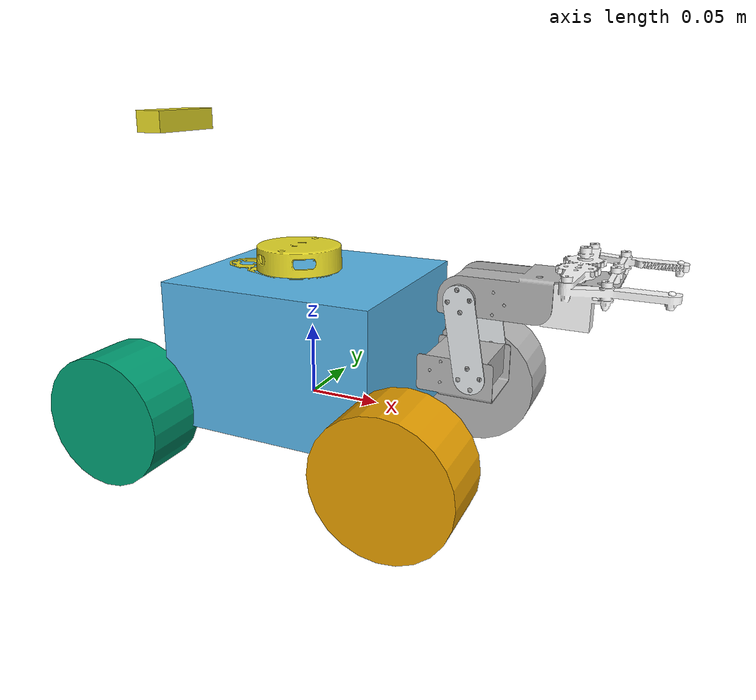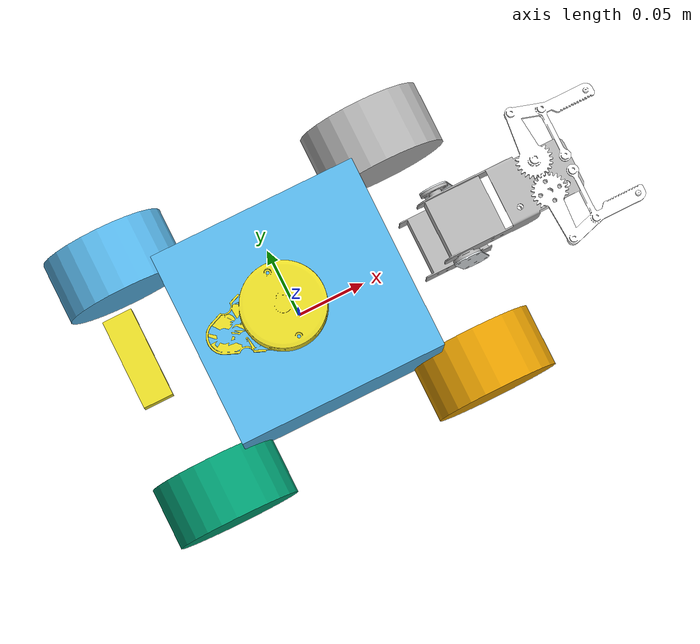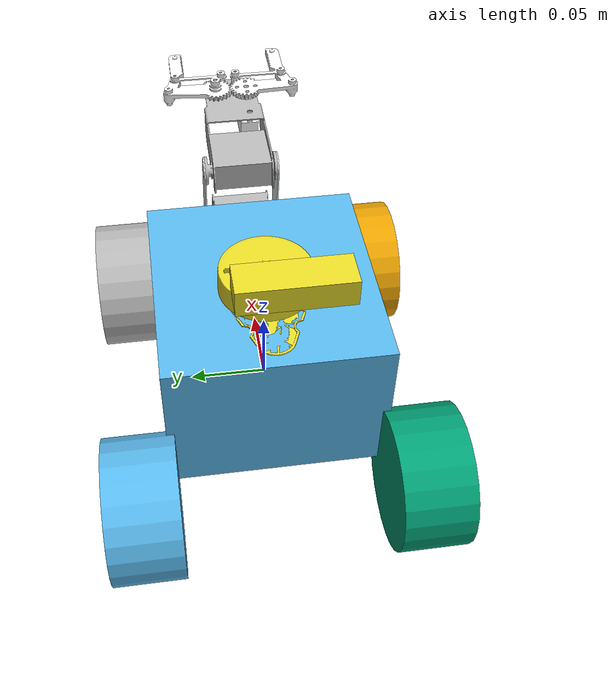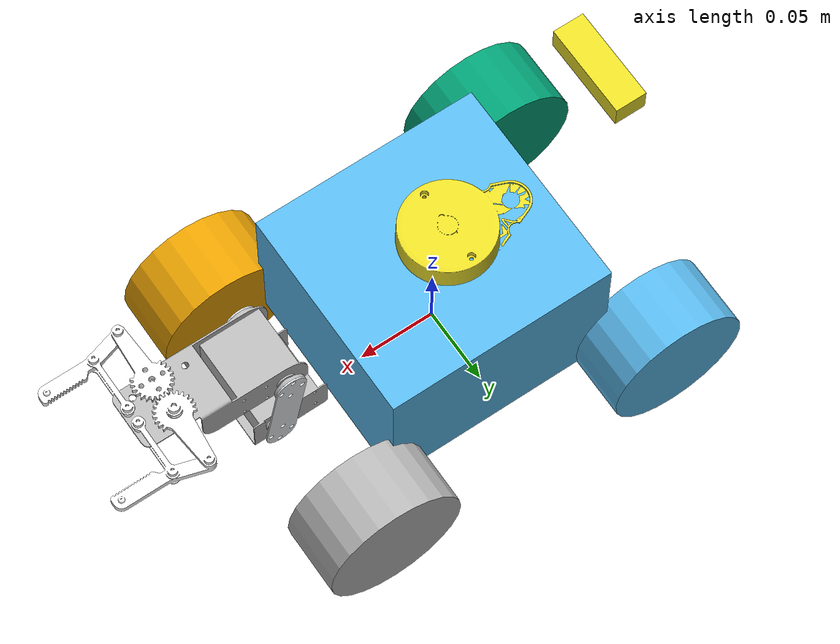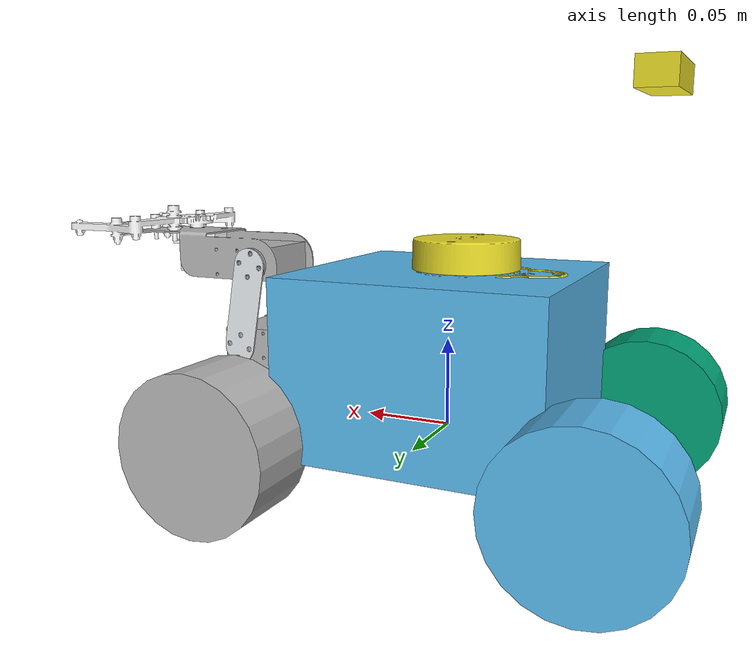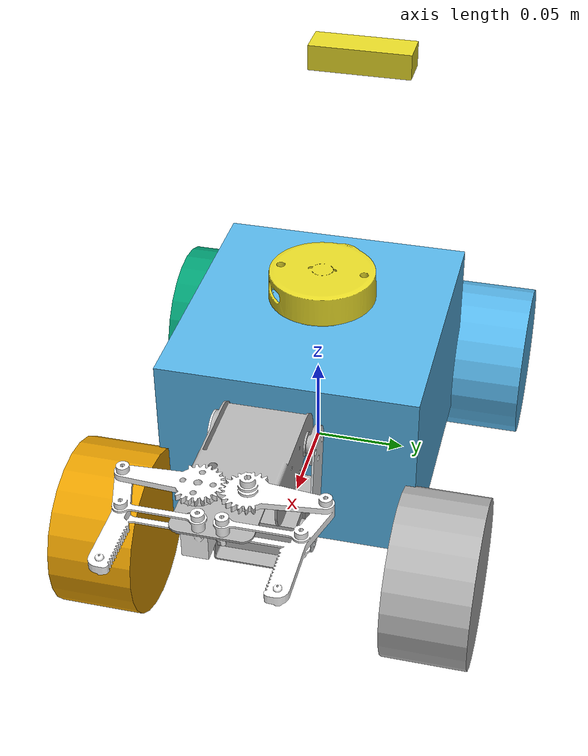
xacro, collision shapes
<?xml version="1.0"?>

<robot name="limo_s2" xmlns:xacro="http://ros.org/wiki/xacro">

    <xacro:include filename="$(find limo_s2_description)/urdf/limo_s2.xacro" />
    <xacro:include filename="$(find limo_s2_arm)/urdf/limo_s2_arm.urdf" />

  <joint name="limo_with_arm" type="fixed">
    <parent link="base_link"/>
    <child link="arm_base"/>
    <origin xyz="0.12 0.0 -0.075" rpy="0 0 0"/>
  </joint>

  </robot>

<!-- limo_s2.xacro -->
<robot name="limo_s2" xmlns:xacro="http://ros.org/wiki/xacro">

    <xacro:include filename="$(find limo_s2_description)/urdf/limo_xacro.xacro" />
    <xacro:include filename="$(find limo_s2_description)/urdf/limo_s2.gazebo" />

    <!-- Variables -->
    <xacro:property name="M_PI" value="3.14159"/>

    <!-- Vehicle Geometries -->
    <xacro:property name="base_x_size" value="0.1" />
    <xacro:property name="base_y_size" value="0.1" />
    <xacro:property name="base_z_size" value="0.1" />

    <xacro:property name="wheelbase" value="0.2"/>
    <xacro:property name="track" value="0.13"/>
    <xacro:property name="wheel_vertical_offset" value="-0.10" />
    <xacro:property name="base_mass" value="2.1557"/>

    <xacro:property name="wheel_length" value="0.045" />
    <xacro:property name="wheel_radius" value="0.045" />
  <link name="base_footprint"/>

  <joint name="base_joint" type="fixed">
    <parent link="base_footprint"/>
    <child link="base_link"/>
    <origin xyz="0.0 0.0 0.1" rpy="0 0 0"/>
  </joint>
    <!-- Base link -->
    <link name="base_link">
        <visual>
            <origin xyz="0.095 0 -0.035" rpy="0 0 1.57" />
            <geometry>
                <mesh filename="package://limo_s2_description/meshes/dae/base_link.dae" scale="1 1 1"/>
            </geometry>
        </visual>
        <collision>
            <!--origin xyz="0 0 -0.15" rpy="0 0 1.57" /-->
            <origin xyz="0 0 -0.06" rpy="0 0 0" />
          <geometry>
              <box size="0.15 0.14 0.1"/>
          </geometry>
        </collision>
    </link>

    <link name="inertial_link">
        <inertial>
            <origin xyz="0.0 0.0 0.0" />
            <mass value="2.1557" />
            <inertia ixx="0.24" ixy="0" ixz="0"
                     iyy="0.96" iyz="0"
                     izz="0.96" />
        </inertial>
    </link>

    <joint name="inertial_joint" type="fixed">
        <origin xyz="0 0 0" rpy="0 0 0" />
        <parent link="base_link" />
        <child link="inertial_link" />
    </joint>

    <xacro:limo_laser parent_prefix="base_link" frame_prefix="laser">
        <origin xyz="-0.01 0 -0.01" rpy="0 0 0"/>
    </xacro:limo_laser>

    <xacro:limo_depth_camera parent_prefix="base_link" frame_prefix="depth_camera">
        <origin xyz="-0.11 0 0.090  " rpy="0 -0.436 0"/>
    </xacro:limo_depth_camera>

    <xacro:limo_imu parent_prefix="base_link" frame_prefix="imu">
        <origin xyz="0.0 0 -0.1" rpy="0 0 0"/>
    </xacro:limo_imu>

    <xacro:limo_wheel_1 parent_prefix="base_link" wheel_prefix="front_left" reflect="1">
        <origin xyz="${wheelbase/2} ${track/2} ${wheel_vertical_offset}" rpy="0 0  0" />
    </xacro:limo_wheel_1>

    <xacro:limo_wheel_2 parent_prefix="base_link" wheel_prefix="front_right" reflect="-1">
        <origin xyz="${wheelbase/2} ${-track/2} ${wheel_vertical_offset}" rpy="${M_PI} 0 0" />
    </xacro:limo_wheel_2>

    <xacro:limo_wheel_2 parent_prefix="base_link" wheel_prefix="rear_left" reflect="1">
        <origin xyz="${-wheelbase/2} ${track/2} ${wheel_vertical_offset}" rpy="0 0 0" />
    </xacro:limo_wheel_2>

    <xacro:limo_wheel_1 parent_prefix="base_link" wheel_prefix="rear_right" reflect="-1">
        <origin xyz="${-wheelbase/2} ${-track/2} ${wheel_vertical_offset}" rpy="${M_PI} 0 0" />
    </xacro:limo_wheel_1>
</robot>

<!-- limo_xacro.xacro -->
<robot name="limo_xacro" xmlns:xacro="http://ros.org/wiki/xacro">
    <xacro:macro name="limo_wheel_1" params="parent_prefix wheel_prefix reflect *joint_pose">
        <link name="${wheel_prefix}_wheel_link">
            <inertial>
                <origin xyz="0 0 0" />
                <mass value="0.5" />
                <inertia ixx="0.01055" ixy="0" ixz="0" iyy="0.00075" iyz="0" izz="0.01055" />
            </inertial>
            <visual>
                <origin xyz="0.01 -0.064 0.064" rpy="0 0 -1.57" />
                <geometry>
                    <mesh filename="package://limo_s2_description/meshes/dae/LIMO_S2_mailun_1.dae" />
                </geometry>
            </visual>
            <collision>
              <origin xyz="0 ${wheel_length/2} 0" rpy="1.57 0 0" />
              <geometry>
                  <cylinder length="${wheel_length}" radius="${wheel_radius}" />
              </geometry>
            </collision>
        </link>

        <joint name="${wheel_prefix}_wheel" type="continuous">
            <parent link="${parent_prefix}"/>
            <child link="${wheel_prefix}_wheel_link"/>
            <xacro:insert_block name="joint_pose"/>
            <axis xyz="0 ${reflect*1} 0"/>
        </joint>
    </xacro:macro>

    <xacro:macro name="limo_wheel_2" params="parent_prefix wheel_prefix reflect *joint_pose">
        <link name="${wheel_prefix}_wheel_link">
            <inertial>
                <origin xyz="0 0 0" />
                <mass value="0.5" />
                <inertia ixx="0.01055" ixy="0" ixz="0" iyy="0.00075" iyz="0" izz="0.01055" />
            </inertial>
            <visual>
                <origin xyz="0 0 0" rpy="0 0 0" />
                <geometry>
                    <mesh filename="package://limo_s2_description/meshes/dae/LIMO_S2_mailun_2.dae" />
                </geometry>
            </visual>
            <collision>
              <origin xyz="0 ${wheel_length/2} 0" rpy="1.57 0 0" />
              <geometry>
                  <cylinder length="${wheel_length}" radius="${wheel_radius}" />
              </geometry>
            </collision>
        </link>

        <joint name="${wheel_prefix}_wheel" type="continuous">
            <parent link="${parent_prefix}"/>
            <child link="${wheel_prefix}_wheel_link"/>
            <xacro:insert_block name="joint_pose"/>
            <axis xyz="0 ${reflect*1} 0"/>
        </joint>
    </xacro:macro>

    <xacro:macro name="limo_laser" params="parent_prefix frame_prefix *joint_pose">
        <link name='${frame_prefix}_link'>
            <pose>0 0 0 0 0 0</pose>
            <inertial>
                <mass value="0.1"/>
                <origin xyz="0 0 0" rpy="0 0 0"/>
                <inertia
                    ixx="1e-6" ixy="0" ixz="0"
                    iyy="1e-6" iyz="0"
                    izz="1e-6"
                />
            </inertial>
            <visual name='laser_visual'>
                <origin xyz="0 0 0" rpy="0 0 0"/>
                <geometry>
                    <mesh filename="package://limo_s2_description/meshes/laser_Link.STL" />
                </geometry>
                <material name='laser_material'>
                    <ambient>0.1 0.1 0.1 1</ambient>
                    <diffuse>0.1 0.1 0.2 1</diffuse>
                    <specular>0 0 0 0</specular>
                    <emissive>0 0 0 1</emissive>
                </material>
            </visual>
            <collision name='laser_collision'>
                <origin xyz="0 0 0" rpy="0 0 0"/>
                <geometry>
                    <mesh filename="package://limo_s2_description/meshes/laser_Link.STL" />
                </geometry>
            </collision>
        </link>
        <joint type="fixed" name="laser_joint">
            <xacro:insert_block name="joint_pose"/>
            <child link="${frame_prefix}_link"/>
            <parent link="${parent_prefix}"/>
        </joint>
        <gazebo reference="${frame_prefix}_link">
            <material>Gazebo/Yellow</material>
        </gazebo>
    </xacro:macro>

    <xacro:macro name="limo_depth_camera" params="parent_prefix frame_prefix *joint_pose">
        <link name='${frame_prefix}_link'>
            <pose>0 0 0 0 0 0</pose>
            <inertial>
                <mass value="0.1"/>
                <origin xyz="0.0 0 0" rpy="0 0 0"/>
                <inertia
                    ixx="1e-6" ixy="0" ixz="0"
                    iyy="1e-6" iyz="0"
                    izz="1e-6"
                />
            </inertial>
            <visual name='depth_camera_visual'>
                <origin xyz="0.21 0 -0.13" rpy="0 0 1.57 "/>
                <geometry>
                    <mesh filename="package://limo_s2_description/meshes/dae/camera_Link.dae" />
                </geometry>
                <material name='depth_camera_material'>
                    <ambient>0.1 0.1 0.1 1</ambient>
                    <diffuse>0.1 0.1 0.2 1</diffuse>
                    <specular>0 0 0 0</specular>
                    <emissive>0 0 0 1</emissive>
                </material>
            </visual>
            <collision name='depth_camera_collision'>
                <origin xyz="0 0 0" rpy="0 0.436 0"/>
                <geometry>
                    <box size="0.02 0.06 0.015"/>
                </geometry>
            </collision>
        </link>

        <joint type="fixed" name="depth_camera_joint">
            <xacro:insert_block name="joint_pose"/>
            <child link="${frame_prefix}_link"/>
            <parent link="${parent_prefix}"/>
        </joint>
        <link name="depth_link"></link>

        <joint name="${frame_prefix}_to_camera_joint" type="fixed">
            <origin xyz="0 0 0" rpy="${-M_PI/2} 0 ${-M_PI/2} "/>
            <parent link="${frame_prefix}_link"/>
            <child link="depth_link"/>
          </joint>

        <gazebo reference="${frame_prefix}_link">
            <material>Gazebo/Yellow</material>
        </gazebo>
    </xacro:macro>

    <xacro:macro name="limo_imu" params="parent_prefix frame_prefix  *joint_pose">
        <link name='${frame_prefix}_link'>
            <pose>0 0 0 0 0 0</pose>
            <inertial>
                <mass value="0.01"/>
                <origin xyz="0.0 0 0" rpy="0 0 0"/>
                <inertia
                    ixx="1e-7" ixy="0" ixz="0"
                    iyy="1e-7" iyz="0"
                    izz="1e-7"
                />
            </inertial>
            <visual name='imu_visual'>
                <origin xyz="0 0 0" rpy="0 0 0"/>
                <geometry>
                    <box size="0.001 0.001 0.001"/>
                </geometry>
                <material name='imu_material'>
                    <ambient>0.1 0.1 0.1 1</ambient>
                    <diffuse>0.1 0.1 0.2 1</diffuse>
                    <specular>0 0 0 0</specular>
                    <emissive>0 0 0 1</emissive>
                </material>
            </visual>
            <collision name='imu_collision'>
                <origin xyz="0 0 0" rpy="0 0 0"/>
                <geometry>
                    <box size="0.001 0.001 0.001"/>
                </geometry>
            </collision>
        </link>
        <joint type="fixed" name="imu_joint">
            <xacro:insert_block name="joint_pose"/>
            <child link="${frame_prefix}_link"/>
            <parent link="${parent_prefix}"/>
        </joint>
        <gazebo reference="${frame_prefix}_link">
            <material>Gazebo/Yellow</material>
        </gazebo>
    </xacro:macro>
</robot>

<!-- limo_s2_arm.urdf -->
<robot
  name="limo_s2_arm">
  <link
    name="arm_base">
    <inertial>
      <origin
        xyz="-0.0062468 -7.8708E-06 0.013495"
        rpy="0 0 0" />
      <mass
        value="0.040342" />
      <inertia
        ixx="8.5565E-06"
        ixy="-1.1664E-09"
        ixz="2.5879E-07"
        iyy="7.366E-06"
        iyz="1.3719E-09"
        izz="1.2778E-05" />
    </inertial>
    <visual>
      <origin
        xyz="0 0 0"
        rpy="0 0 0" />
      <geometry>
        <mesh
          filename="package://limo_s2_arm/meshes/arm_base.STL" />
      </geometry>
      <material
        name="">
        <color
          rgba="0.70588 0.70588 0.70588 1" />
      </material>
    </visual>
    <collision>
      <origin
        xyz="0 0 0"
        rpy="0 0 0" />
      <geometry>
        <mesh
          filename="package://limo_s2_arm/meshes/arm_base.STL" />
      </geometry>
    </collision>
  </link>
  <link
    name="arm_link1">
    <inertial>
      <origin
        xyz="0.029004 0.0033255 -0.001"
        rpy="0 0 0" />
      <mass
        value="0.006749" />
      <inertia
        ixx="2.7901E-07"
        ixy="-3.6735E-07"
        ixz="5.1618E-22"
        iyy="2.2976E-06"
        iyz="-2.8565E-23"
        izz="2.5755E-06" />
    </inertial>
    <visual>
      <origin
        xyz="0 0 0"
        rpy="0 0 0" />
      <geometry>
        <mesh
          filename="package://limo_s2_arm/meshes/arm_link1.STL" />
      </geometry>
      <material
        name="">
        <color
          rgba="0.89804 0.91765 0.92941 1" />
      </material>
    </visual>
    <collision>
      <origin
        xyz="0 0 0"
        rpy="0 0 0" />
      <geometry>
        <mesh
          filename="package://limo_s2_arm/meshes/arm_link1.STL" />
      </geometry>
    </collision>
  </link>
  <joint
    name="arm_joint1"
    type="revolute">
    <origin
      xyz="0.0024598 0 0.010616"
      rpy="1.5708 -1.5708 0" />
    <parent
      link="arm_base" />
    <child
      link="arm_link1" />
    <axis
      xyz="0 0 1" />
    <limit
      lower="-3.14"
      upper="3.14"
      effort="1"
      velocity="100" />
  </joint>
  <link
    name="arm_link2">
    <inertial>
      <origin
        xyz="0.017496 0.0069124 -0.00013621"
        rpy="0 0 0" />
      <mass
        value="0.047632" />
      <inertia
        ixx="1.0953E-05"
        ixy="-1.692E-06"
        ixz="8.1762E-08"
        iyy="2.2483E-05"
        iyz="2.5084E-08"
        izz="1.5744E-05" />
    </inertial>
    <visual>
      <origin
        xyz="0 0 0"
        rpy="0 0 0" />
      <geometry>
        <mesh
          filename="package://limo_s2_arm/meshes/arm_link2.STL" />
      </geometry>
      <material
        name="">
        <color
          rgba="0.70588 0.70588 0.70588 1" />
      </material>
    </visual>
    <collision>
      <origin
        xyz="0 0 0"
        rpy="0 0 0" />
      <geometry>
        <mesh
          filename="package://limo_s2_arm/meshes/arm_link2.STL" />
      </geometry>
    </collision>
  </link>
  <joint
    name="arm_joint2"
    type="revolute">
    <origin
      xyz="0.049139 0.0073031 0"
      rpy="0 0 -1.5708" />
    <parent
      link="arm_link1" />
    <child
      link="arm_link2" />
    <axis
      xyz="0 0 1" />
    <limit
      lower="-3.14"
      upper="3.14"
      effort="1"
      velocity="100" />
  </joint>
  <link
    name="arm_link3">
    <inertial>
      <origin
        xyz="0.01018 0.0086737 -0.0039578"
        rpy="0 0 0" />
      <mass
        value="0.03827" />
      <inertia
        ixx="3.1125E-06"
        ixy="2.3277E-16"
        ixz="-7.8003E-09"
        iyy="4.825E-06"
        iyz="7.4118E-22"
        izz="6.6134E-06" />
    </inertial>
    <visual>
      <origin
        xyz="0 0 0"
        rpy="0 0 0" />
      <geometry>
        <mesh
          filename="package://limo_s2_arm/meshes/arm_link3.STL" />
      </geometry>
      <material
        name="">
        <color
          rgba="1 1 1 1" />
      </material>
    </visual>
    <collision>
      <origin
        xyz="0 0 0"
        rpy="0 0 0" />
      <geometry>
        <mesh
          filename="package://limo_s2_arm/meshes/arm_link3.STL" />
      </geometry>
    </collision>
  </link>
  <joint
    name="arm_joint3"
    type="fixed">
    <origin
      xyz="0.065886 0.024485 0.0115"
      rpy="-1.5708 0 0" />
    <parent
      link="arm_link2" />
    <child
      link="arm_link3" />
    <axis
      xyz="0 0 0" />
  </joint>
</robot>
